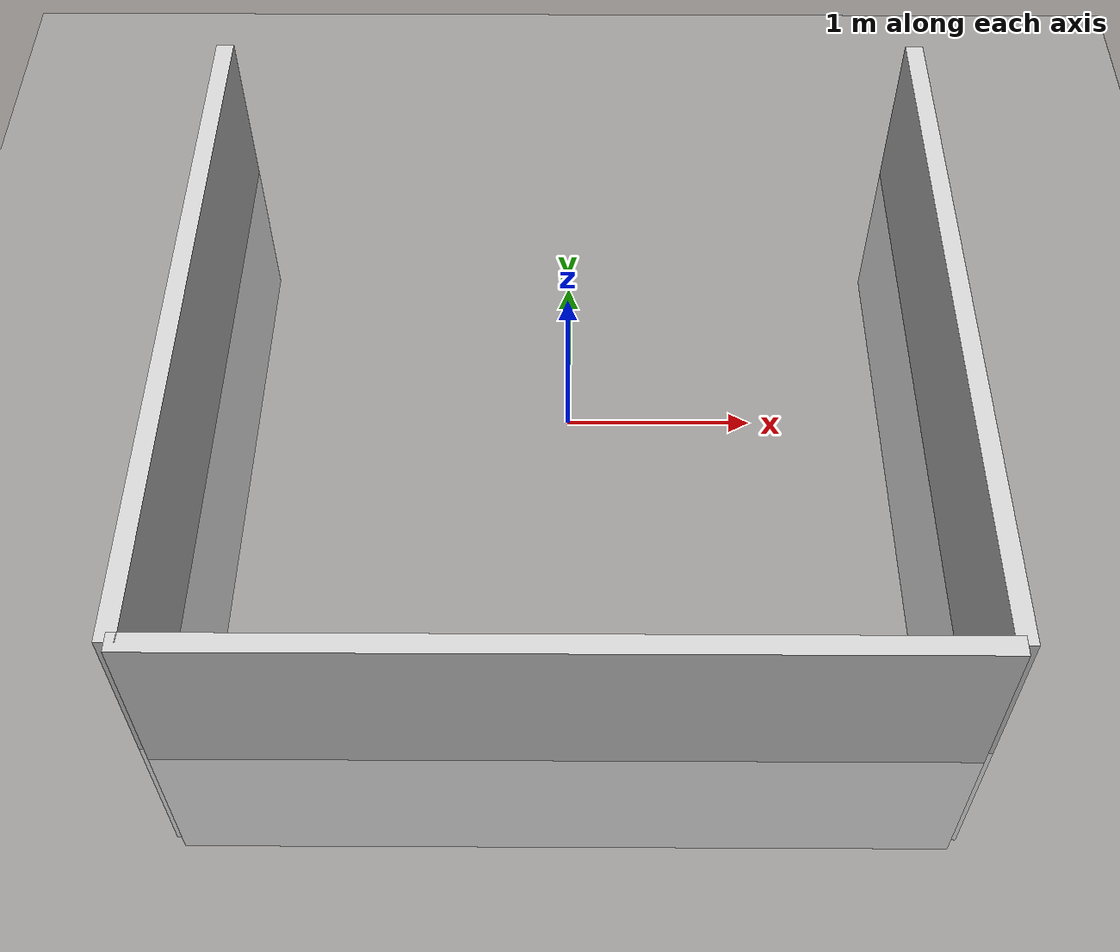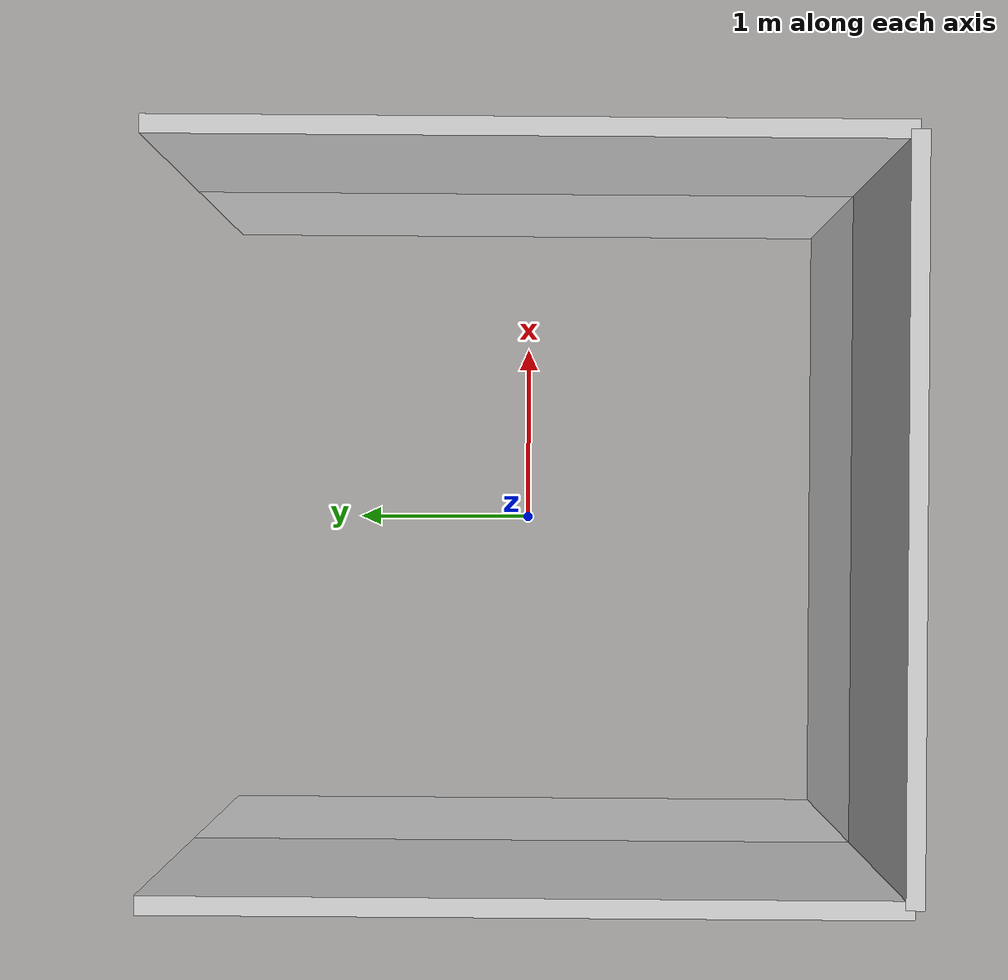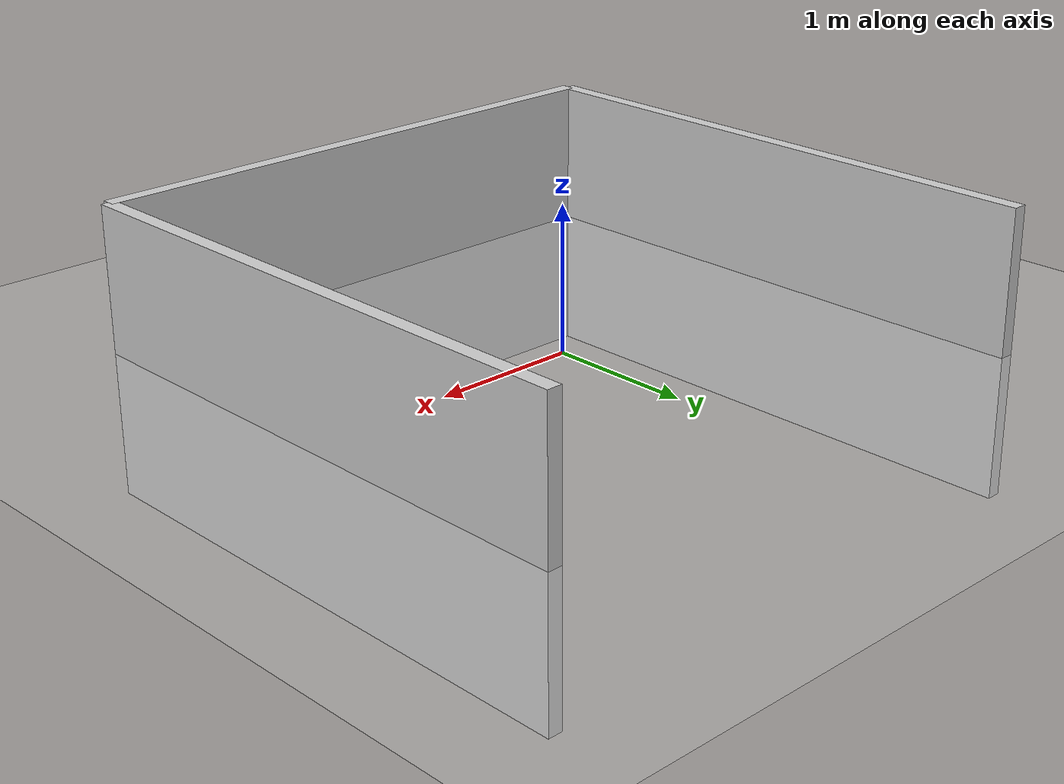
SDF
<?xml version="1.0" ?>
<sdf version="1.5">
  <world name="default">
    <!-- A global light source -->
    <light type="directional" name="sun">
      <cast_shadows>true</cast_shadows>
      <pose>0 0 10 0 0 0</pose>
      <diffuse>0.8 0.8 0.8 1</diffuse>
      <specular>0.2 0.2 0.2 1</specular>
      <attenuation>
        <range>1000</range>
        <constant>0.9</constant>
        <linear>0.01</linear>
        <quadratic>0.001</quadratic>
      </attenuation>
      <direction>-0.5 0.1 -0.9</direction>
    </light>

    <!-- A ground plane -->
    <model name="ground_plane">
      <static>true</static>
      <link name="link">
        <collision name="collision">
          <geometry>
            <plane>
              <normal>0 0 1</normal>
              <size>100 100</size>
            </plane>
          </geometry>
        </collision>
        <visual name="visual">
          <geometry>
            <plane>
              <normal>0 0 1</normal>
              <size>100 100</size>
            </plane>
          </geometry>
          <material>
            <ambient>0.8 0.8 0.8 1</ambient>
            <diffuse>0.8 0.8 0.8 1</diffuse>
            <specular>0.8 0.8 0.8 1</specular>
          </material>
        </visual>
      </link>
    </model>

    <!-- some walls -->
    <model name="walls">
      <link name="wall1">
        <pose>0 -2 0 0 0 0</pose>
        <collision name="wall1_collision">
          <geometry>
            <box>
              <size>4 0.1 2</size>
            </box>
          </geometry>
        </collision>
        <visual name="wall1_visual">
          <geometry>
            <box>
              <size>4 0.1 2</size>
            </box>
          </geometry>
          <material>
            <ambient>0.8 0.8 0.8 1</ambient>
            <diffuse>0.8 0.8 0.8 1</diffuse>
            <specular>0.8 0.8 0.8 1</specular>
          </material>
        </visual>
      </link>

      <link name="wall2">
        <pose>2 0 0 0 0 1.5708</pose>
        <collision name="wall2_collision">
          <geometry>
            <box>
              <size>4 0.1 2</size>
            </box>
          </geometry>
        </collision>
        <visual name="wall2_visual">
          <geometry>
            <box>
              <size>4 0.1 2</size>
            </box>
          </geometry>
          <material>
            <ambient>0.8 0.8 0.8 1</ambient>
            <diffuse>0.8 0.8 0.8 1</diffuse>
            <specular>0.8 0.8 0.8 1</specular>
          </material>
        </visual>
      </link>

      <link name="wall3">
        <pose>-2 0 0 0 0 1.5708</pose>
        <collision name="wall3_collision">
          <geometry>
            <box>
              <size>4 0.1 2</size>
            </box>
          </geometry>
        </collision>
        <visual name="wall3_visual">
          <geometry>
            <box>
              <size>4 0.1 2</size>
            </box>
          </geometry>
          <material>
            <ambient>0.8 0.8 0.8 1</ambient>
            <diffuse>0.8 0.8 0.8 1</diffuse>
            <specular>0.8 0.8 0.8 1</specular>
          </material>
        </visual>
      </link>
    </model>

  </world>
</sdf>
